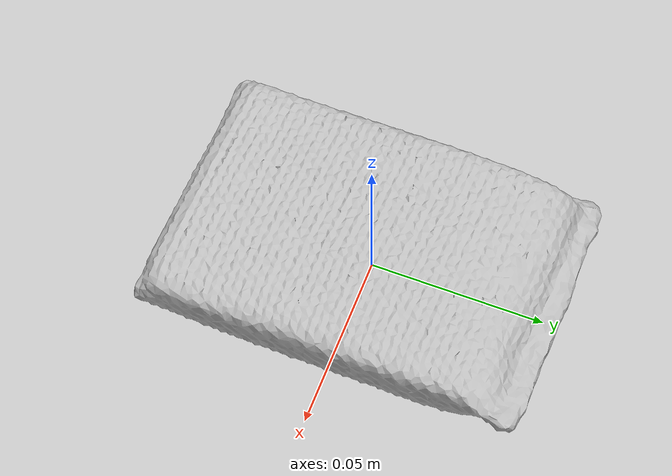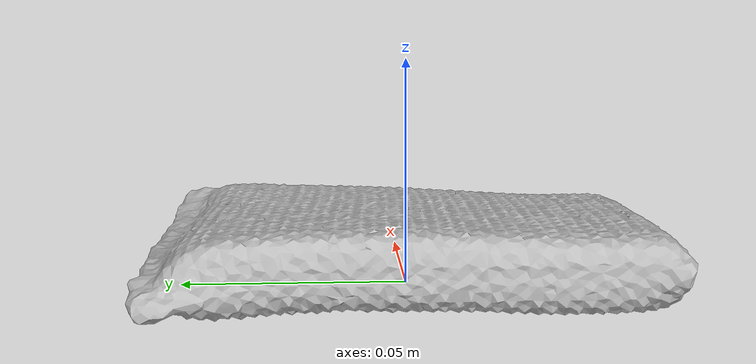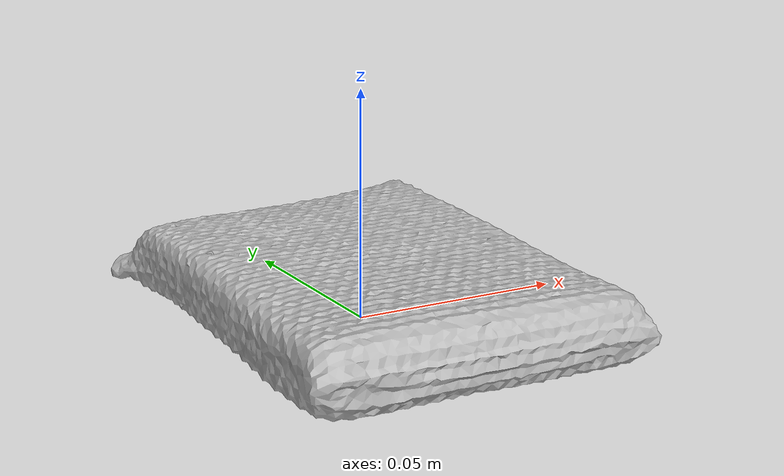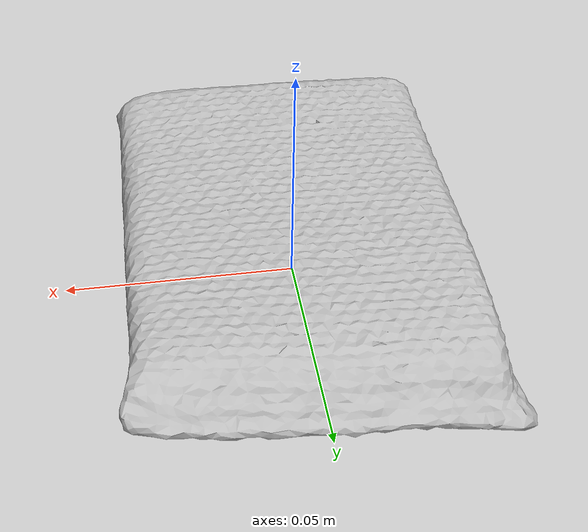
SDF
<?xml version="1.0" ?>
<sdf version='1.8'>
  <model name='ycb_026_sponge'>
    <link name='body'>
      <inertial>
        <mass>0.0062</mass>
        <pose>-0.000172356601 -0.00230443779 0.0088435251 0 0 0</pose>
        <inertia>
          <ixx>5.47518237479e-06</ixx>
          <ixy>-2.90135453564e-08</ixy>
          <ixz>-3.80806608311e-08</ixz>
          <iyy>2.70066917866e-06</iyy>
          <iyz>-5.29960957204e-08</iyz>
          <izz>7.92183322306e-06</izz>
        </inertia>
      </inertial>
      <visual name='ycb_026_sponge_visual'>
        <pose>0.01567 -0.013825 -0.000529 0 0 0</pose>
        <geometry>
          <mesh>
            <uri>model://ycb_026_sponge/meshes/textured.dae</uri>
          </mesh>
        </geometry>
      </visual>
      <collision name='ycb_026_sponge_collision'>
        <pose>0.01567 -0.013825 -0.000529 0 0 0</pose>
        <geometry>
          <mesh>
            <uri>model://ycb_026_sponge/meshes/nontextured.stl</uri>
          </mesh>
        </geometry>
        <max_contacts>10</max_contacts>
        <surface>
          <contact>
            <ode>
              <kp>1e15</kp>
              <kd>1e13</kd>
            </ode>
          </contact>
        </surface>
      </collision>
    </link>
  </model>
</sdf>
